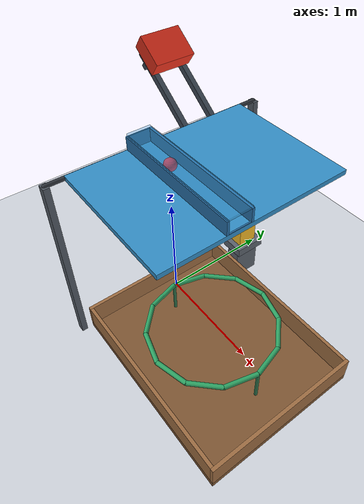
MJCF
<mujoco model="cart_domino_flap_ball_corrected">
  <compiler angle="degree" autolimits="true"/>
  <option timestep="0.002" gravity="0 0 -9.81" integrator="implicitfast" iterations="100" tolerance="1e-9"/>
  <size njmax="2000" nconmax="400"/>
  <visual>
    <global azimuth="135" elevation="-22"/>
    <headlight ambient="0.35 0.35 0.35" diffuse="0.7 0.7 0.7" specular="0.2 0.2 0.2"/>
  </visual>

  <worldbody>
    <light name="overhead" pos="0 -2 4" dir="0 0 -1"/>
    <camera name="overview" pos="3 -5 3" xyaxes="0.86 0.51 0 -0.23 0.39 0.89"/>
    <geom name="floor" type="plane" size="5 5 0.1" rgba="0.82 0.84 0.87 1" friction="0.9 0.02 0.01" condim="6"/>

    <!-- The slide supplies the rail constraint over 1.2 m of travel. -->
    <body name="rail" pos="-0.546 0.65 1.392" quat="0.948683298 0 0.316227766 0">
      <geom name="rail_left" type="box" pos="0 -0.15 0" size="0.70 0.025 0.03" contype="0" conaffinity="0" rgba="0.24 0.28 0.33 1"/>
      <geom name="rail_right" type="box" pos="0 0.15 0" size="0.70 0.025 0.03" contype="0" conaffinity="0" rgba="0.24 0.28 0.33 1"/>
      <geom name="rail_crossbar_upper" type="box" pos="-0.58 0 -0.025" size="0.025 0.19 0.025" contype="0" conaffinity="0" rgba="0.24 0.28 0.33 1"/>
      <geom name="rail_crossbar_lower" type="box" pos="0.58 0 -0.025" size="0.025 0.19 0.025" contype="0" conaffinity="0" rgba="0.24 0.28 0.33 1"/>
    </body>

    <body name="cart" pos="-0.96 0.65 1.84">
      <joint name="cart_slide" type="slide" axis="-0.8 0 0.6" range="-1.2 0" damping="0.05" solreflimit="0.008 1"/>
      <geom name="cart_chassis" type="box" size="0.15 0.20 0.08" quat="0.948683298 0 0.316227766 0" mass="3.0" friction="0.6 0.01 0.001" solref="0.008 1" rgba="0.85 0.18 0.10 1"/>
    </body>

    <body name="domino_support" pos="0.21 0.65 0">
      <geom name="domino_support_column" type="box" pos="0 0 0.18" size="0.065 0.12 0.18" rgba="0.36 0.39 0.43 1"/>
      <geom name="domino_support_top" type="box" pos="0 0 0.36" size="0.11 0.14 0.04" friction="1.2 0.02 0.002" solref="0.008 1" rgba="0.36 0.39 0.43 1"/>
    </body>

    <!-- A square foot keeps the domino standing; the rounded crown avoids wedging under the flap. -->
    <body name="domino" pos="0.21 0.65 1.0">
      <freejoint name="domino_free"/>
      <geom name="domino_slab" type="box" pos="0 0 -0.03" size="0.06 0.09 0.57" mass="1.45" friction="1.2 0.02 0.002" condim="4" solref="0.008 1" rgba="0.96 0.73 0.16 1"/>
      <geom name="domino_rounded_top" type="capsule" fromto="0 -0.03 0.54 0 0.03 0.54" size="0.06" mass="0.05" friction="0.03 0.001 0.0001" condim="3" solref="0.008 1" rgba="0.96 0.73 0.16 1"/>
    </body>

    <body name="flap_support" pos="-0.1 0 0">
      <geom name="flap_support_positive" type="box" pos="0 0.95 0.81" size="0.035 0.025 0.81" rgba="0.32 0.35 0.39 1"/>
      <geom name="flap_support_negative" type="box" pos="0 -0.95 0.81" size="0.035 0.025 0.81" rgba="0.32 0.35 0.39 1"/>
      <geom name="flap_support_axle" type="capsule" fromto="0 -0.95 1.62 0 0.95 1.62" size="0.018" contype="0" conaffinity="0" rgba="0.20 0.22 0.25 1"/>
    </body>

    <!-- The domino initially supports this gravity-driven flap. -->
    <!-- The positive allowance permits lifting during impact; -60 degrees is the lower stop. -->
    <body name="flap" pos="-0.1 0 1.62">
      <joint name="flap_hinge" type="hinge" axis="0 -1 0" range="-60 10" damping="0.12" armature="0.002" solreflimit="0.008 1"/>
      <geom name="flap_plate" type="box" pos="0.575 0 0" size="0.575 0.80 0.02" mass="0.18" friction="0.4 0.001 0.0001" solref="0.008 1" rgba="0.20 0.56 0.78 1"/>
      <geom name="flap_release_lip" type="box" pos="1.145 -0.18 0.0235" size="0.005 0.09 0.0035" mass="0.001" friction="0.3 0.001 0.0001" solref="0.008 1" rgba="0.15 0.43 0.65 1"/>
      <geom name="flap_tunnel_roof" type="box" pos="0.575 -0.18 0.145" size="0.575 0.10 0.01" mass="0.025" friction="0.4 0.001 0.0001" solref="0.008 1" rgba="0.20 0.56 0.78 0.35"/>
      <geom name="flap_tunnel_wall_negative" type="box" pos="0.575 -0.28 0.0775" size="0.575 0.01 0.0575" mass="0.008" friction="0.4 0.001 0.0001" solref="0.008 1" rgba="0.15 0.43 0.65 1"/>
      <geom name="flap_tunnel_wall_positive" type="box" pos="0.575 -0.08 0.0775" size="0.575 0.01 0.0575" mass="0.008" friction="0.4 0.001 0.0001" solref="0.008 1" rgba="0.15 0.43 0.65 1"/>
      <geom name="flap_tunnel_rear" type="box" pos="0.005 -0.18 0.0775" size="0.005 0.09 0.0575" mass="0.002" friction="0.4 0.001 0.0001" solref="0.008 1" rgba="0.15 0.43 0.65 1"/>
    </body>

    <body name="ball" pos="0.30 -0.18 1.69">
      <freejoint name="ball_free"/>
      <geom name="ball_sphere" type="sphere" size="0.05" mass="0.06" friction="0.6 0.005 0.0002" condim="6" solref="0.015 1" solimp="0.95 0.99 0.001" rgba="0.86 0.16 0.23 1"/>
    </body>

    <body name="ring" pos="0.80 -0.18 0.35">
      <geom name="ring_01" type="capsule" fromto="0.550000 0 0 0.476314 0.275000 0" size="0.020" friction="0.5 0.005 0.0005" condim="6" solref="0.015 1" rgba="0.18 0.64 0.39 1"/>
      <geom name="ring_02" type="capsule" fromto="0.476314 0.275000 0 0.275000 0.476314 0" size="0.020" friction="0.5 0.005 0.0005" condim="6" solref="0.015 1" rgba="0.18 0.64 0.39 1"/>
      <geom name="ring_03" type="capsule" fromto="0.275000 0.476314 0 0 0.550000 0" size="0.020" friction="0.5 0.005 0.0005" condim="6" solref="0.015 1" rgba="0.18 0.64 0.39 1"/>
      <geom name="ring_04" type="capsule" fromto="0 0.550000 0 -0.275000 0.476314 0" size="0.020" friction="0.5 0.005 0.0005" condim="6" solref="0.015 1" rgba="0.18 0.64 0.39 1"/>
      <geom name="ring_05" type="capsule" fromto="-0.275000 0.476314 0 -0.476314 0.275000 0" size="0.020" friction="0.5 0.005 0.0005" condim="6" solref="0.015 1" rgba="0.18 0.64 0.39 1"/>
      <geom name="ring_06" type="capsule" fromto="-0.476314 0.275000 0 -0.550000 0 0" size="0.020" friction="0.5 0.005 0.0005" condim="6" solref="0.015 1" rgba="0.18 0.64 0.39 1"/>
      <geom name="ring_07" type="capsule" fromto="-0.550000 0 0 -0.476314 -0.275000 0" size="0.020" friction="0.5 0.005 0.0005" condim="6" solref="0.015 1" rgba="0.18 0.64 0.39 1"/>
      <geom name="ring_08" type="capsule" fromto="-0.476314 -0.275000 0 -0.275000 -0.476314 0" size="0.020" friction="0.5 0.005 0.0005" condim="6" solref="0.015 1" rgba="0.18 0.64 0.39 1"/>
      <geom name="ring_09" type="capsule" fromto="-0.275000 -0.476314 0 0 -0.550000 0" size="0.020" friction="0.5 0.005 0.0005" condim="6" solref="0.015 1" rgba="0.18 0.64 0.39 1"/>
      <geom name="ring_10" type="capsule" fromto="0 -0.550000 0 0.275000 -0.476314 0" size="0.020" friction="0.5 0.005 0.0005" condim="6" solref="0.015 1" rgba="0.18 0.64 0.39 1"/>
      <geom name="ring_11" type="capsule" fromto="0.275000 -0.476314 0 0.476314 -0.275000 0" size="0.020" friction="0.5 0.005 0.0005" condim="6" solref="0.015 1" rgba="0.18 0.64 0.39 1"/>
      <geom name="ring_12" type="capsule" fromto="0.476314 -0.275000 0 0.550000 0 0" size="0.020" friction="0.5 0.005 0.0005" condim="6" solref="0.015 1" rgba="0.18 0.64 0.39 1"/>
    </body>

    <body name="ring_support" pos="0.80 -0.18 0">
      <geom name="ring_support_left" type="capsule" fromto="-0.55 0 0.05 -0.55 0 0.33" size="0.014" rgba="0.18 0.45 0.29 1"/>
      <geom name="ring_support_right" type="capsule" fromto="0.55 0 0.05 0.55 0 0.33" size="0.014" rgba="0.18 0.45 0.29 1"/>
    </body>

    <body name="box" pos="0.80 -0.18 0">
      <geom name="box_bottom" type="box" pos="0 0 0.025" size="0.87 0.69 0.025" friction="1.0 0.03 0.015" condim="6" solref="0.015 1" rgba="0.50 0.34 0.20 1"/>
      <geom name="box_left" type="box" pos="-0.855 0 0.15" size="0.015 0.69 0.10" friction="1.0 0.03 0.015" condim="6" solref="0.015 1" rgba="0.62 0.43 0.26 1"/>
      <geom name="box_right" type="box" pos="0.855 0 0.15" size="0.015 0.69 0.10" friction="1.0 0.03 0.015" condim="6" solref="0.015 1" rgba="0.62 0.43 0.26 1"/>
      <geom name="box_front" type="box" pos="0 -0.675 0.15" size="0.84 0.015 0.10" friction="1.0 0.03 0.015" condim="6" solref="0.015 1" rgba="0.62 0.43 0.26 1"/>
      <geom name="box_back" type="box" pos="0 0.675 0.15" size="0.84 0.015 0.10" friction="1.0 0.03 0.015" condim="6" solref="0.015 1" rgba="0.62 0.43 0.26 1"/>
    </body>
  </worldbody>

  <contact>
    <pair name="domino_crown_flap_contact" geom1="domino_rounded_top" geom2="flap_plate" condim="3" friction="0.03 0.03 0.001 0.0001 0.0001" solref="0.008 1"/>
    <pair name="domino_slab_flap_contact" geom1="domino_slab" geom2="flap_plate" condim="3" friction="0.03 0.03 0.001 0.0001 0.0001" solref="0.008 1"/>
  </contact>

  <keyframe>
    <key name="start" qpos="0 0.21 0.65 1.0 1 0 0 0 0 0.30 -0.18 1.69 1 0 0 0"/>
  </keyframe>
</mujoco>
